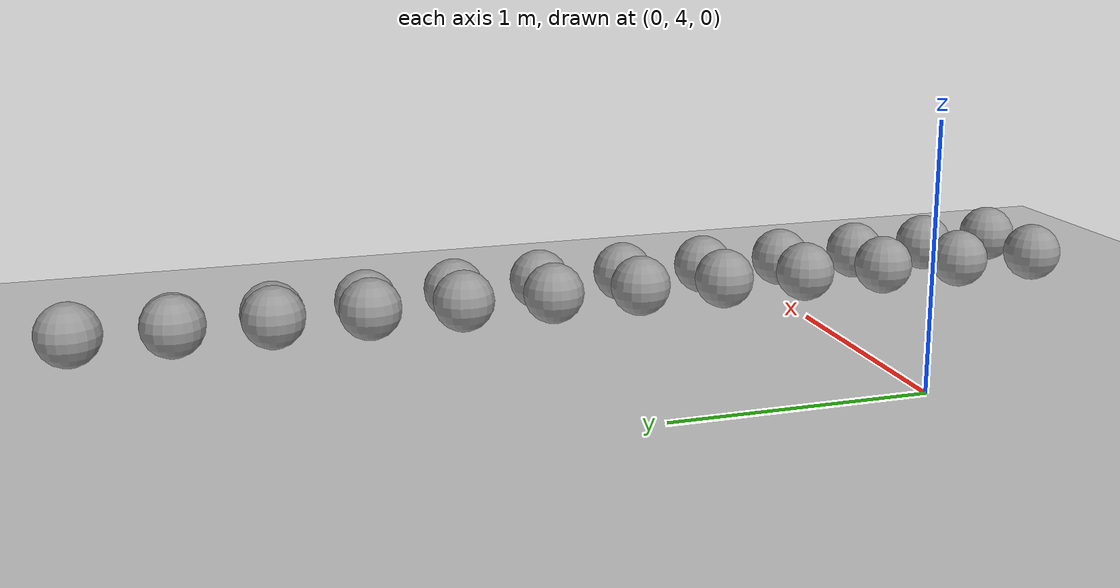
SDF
<sdf version="1.5">
 <world name="collide_spheres">
  <include><uri>model://ground_plane</uri></include>
  <include><uri>model://sun</uri></include>
  <model name="dm30">
   <pose>0.0 3.5999999999999996 0.5  0 0 0</pose>
   <self_collide>true</self_collide>
   <link name="linkA">
    <inertial>
     <mass>2.513274122871835</mass>
     <inertia>
      <ixx>0.010053096491487343</ixx>
      <iyy>0.010053096491487343</iyy>
      <izz>0.010053096491487343</izz>
      <ixy>0</ixy>
      <ixz>0</ixz>
      <iyz>0</iyz>
     </inertia>
    </inertial>
    <collision name="collision"><geometry><sphere><radius>0.1</radius></sphere></geometry></collision>
    <visual name="visual">
     <geometry><sphere><radius>0.1</radius></sphere></geometry>
     <material>
      <script><uri>file://media/materials/scripts/gazebo.material</uri><name>Gazebo/Grey</name></script>
     </material>
    </visual>
   </link>
   <link name="linkB">
    <pose>0.30000000000000004 0.0 0.0  0 0 0</pose>
    <inertial>
     <mass>2.513274122871835</mass>
     <inertia>
      <ixx>0.010053096491487343</ixx>
      <iyy>0.010053096491487343</iyy>
      <izz>0.010053096491487343</izz>
      <ixy>0</ixy>
      <ixz>0</ixz>
      <iyz>0</iyz>
     </inertia>
    </inertial>
    <collision name="collision"><geometry><sphere><radius>0.1</radius></sphere></geometry></collision>
    <visual name="visual">
     <geometry><sphere><radius>0.1</radius></sphere></geometry>
     <material>
      <script><uri>file://media/materials/scripts/gazebo.material</uri><name>Gazebo/Grey</name></script>
     </material>
    </visual>
   </link>
  </model>
  <model name="dm25">
   <pose>0.0 3.9 0.5  0 0 0</pose>
   <self_collide>true</self_collide>
   <link name="linkA">
    <inertial>
     <mass>2.513274122871835</mass>
     <inertia>
      <ixx>0.010053096491487343</ixx>
      <iyy>0.010053096491487343</iyy>
      <izz>0.010053096491487343</izz>
      <ixy>0</ixy>
      <ixz>0</ixz>
      <iyz>0</iyz>
     </inertia>
    </inertial>
    <collision name="collision"><geometry><sphere><radius>0.1</radius></sphere></geometry></collision>
    <visual name="visual">
     <geometry><sphere><radius>0.1</radius></sphere></geometry>
     <material>
      <script><uri>file://media/materials/scripts/gazebo.material</uri><name>Gazebo/Grey</name></script>
     </material>
    </visual>
   </link>
   <link name="linkB">
    <pose>0.25 0.0 0.0  0 0 0</pose>
    <inertial>
     <mass>2.513274122871835</mass>
     <inertia>
      <ixx>0.010053096491487343</ixx>
      <iyy>0.010053096491487343</iyy>
      <izz>0.010053096491487343</izz>
      <ixy>0</ixy>
      <ixz>0</ixz>
      <iyz>0</iyz>
     </inertia>
    </inertial>
    <collision name="collision"><geometry><sphere><radius>0.1</radius></sphere></geometry></collision>
    <visual name="visual">
     <geometry><sphere><radius>0.1</radius></sphere></geometry>
     <material>
      <script><uri>file://media/materials/scripts/gazebo.material</uri><name>Gazebo/Grey</name></script>
     </material>
    </visual>
   </link>
  </model>
  <model name="dm22">
   <pose>0.0 4.2 0.5  0 0 0</pose>
   <self_collide>true</self_collide>
   <link name="linkA">
    <inertial>
     <mass>2.513274122871835</mass>
     <inertia>
      <ixx>0.010053096491487343</ixx>
      <iyy>0.010053096491487343</iyy>
      <izz>0.010053096491487343</izz>
      <ixy>0</ixy>
      <ixz>0</ixz>
      <iyz>0</iyz>
     </inertia>
    </inertial>
    <collision name="collision"><geometry><sphere><radius>0.1</radius></sphere></geometry></collision>
    <visual name="visual">
     <geometry><sphere><radius>0.1</radius></sphere></geometry>
     <material>
      <script><uri>file://media/materials/scripts/gazebo.material</uri><name>Gazebo/Grey</name></script>
     </material>
    </visual>
   </link>
   <link name="linkB">
    <pose>0.22000000000000003 0.0 0.0  0 0 0</pose>
    <inertial>
     <mass>2.513274122871835</mass>
     <inertia>
      <ixx>0.010053096491487343</ixx>
      <iyy>0.010053096491487343</iyy>
      <izz>0.010053096491487343</izz>
      <ixy>0</ixy>
      <ixz>0</ixz>
      <iyz>0</iyz>
     </inertia>
    </inertial>
    <collision name="collision"><geometry><sphere><radius>0.1</radius></sphere></geometry></collision>
    <visual name="visual">
     <geometry><sphere><radius>0.1</radius></sphere></geometry>
     <material>
      <script><uri>file://media/materials/scripts/gazebo.material</uri><name>Gazebo/Grey</name></script>
     </material>
    </visual>
   </link>
  </model>
  <model name="dm21">
   <pose>0.0 4.5 0.5  0 0 0</pose>
   <self_collide>true</self_collide>
   <link name="linkA">
    <inertial>
     <mass>2.513274122871835</mass>
     <inertia>
      <ixx>0.010053096491487343</ixx>
      <iyy>0.010053096491487343</iyy>
      <izz>0.010053096491487343</izz>
      <ixy>0</ixy>
      <ixz>0</ixz>
      <iyz>0</iyz>
     </inertia>
    </inertial>
    <collision name="collision"><geometry><sphere><radius>0.1</radius></sphere></geometry></collision>
    <visual name="visual">
     <geometry><sphere><radius>0.1</radius></sphere></geometry>
     <material>
      <script><uri>file://media/materials/scripts/gazebo.material</uri><name>Gazebo/Grey</name></script>
     </material>
    </visual>
   </link>
   <link name="linkB">
    <pose>0.21000000000000002 0.0 0.0  0 0 0</pose>
    <inertial>
     <mass>2.513274122871835</mass>
     <inertia>
      <ixx>0.010053096491487343</ixx>
      <iyy>0.010053096491487343</iyy>
      <izz>0.010053096491487343</izz>
      <ixy>0</ixy>
      <ixz>0</ixz>
      <iyz>0</iyz>
     </inertia>
    </inertial>
    <collision name="collision"><geometry><sphere><radius>0.1</radius></sphere></geometry></collision>
    <visual name="visual">
     <geometry><sphere><radius>0.1</radius></sphere></geometry>
     <material>
      <script><uri>file://media/materials/scripts/gazebo.material</uri><name>Gazebo/Grey</name></script>
     </material>
    </visual>
   </link>
  </model>
  <model name="dm20">
   <pose>0.0 4.8 0.5  0 0 0</pose>
   <self_collide>true</self_collide>
   <link name="linkA">
    <inertial>
     <mass>2.513274122871835</mass>
     <inertia>
      <ixx>0.010053096491487343</ixx>
      <iyy>0.010053096491487343</iyy>
      <izz>0.010053096491487343</izz>
      <ixy>0</ixy>
      <ixz>0</ixz>
      <iyz>0</iyz>
     </inertia>
    </inertial>
    <collision name="collision"><geometry><sphere><radius>0.1</radius></sphere></geometry></collision>
    <visual name="visual">
     <geometry><sphere><radius>0.1</radius></sphere></geometry>
     <material>
      <script><uri>file://media/materials/scripts/gazebo.material</uri><name>Gazebo/Grey</name></script>
     </material>
    </visual>
   </link>
   <link name="linkB">
    <pose>0.2 0.0 0.0  0 0 0</pose>
    <inertial>
     <mass>2.513274122871835</mass>
     <inertia>
      <ixx>0.010053096491487343</ixx>
      <iyy>0.010053096491487343</iyy>
      <izz>0.010053096491487343</izz>
      <ixy>0</ixy>
      <ixz>0</ixz>
      <iyz>0</iyz>
     </inertia>
    </inertial>
    <collision name="collision"><geometry><sphere><radius>0.1</radius></sphere></geometry></collision>
    <visual name="visual">
     <geometry><sphere><radius>0.1</radius></sphere></geometry>
     <material>
      <script><uri>file://media/materials/scripts/gazebo.material</uri><name>Gazebo/Grey</name></script>
     </material>
    </visual>
   </link>
  </model>
  <model name="dm19">
   <pose>0.0 5.1 0.5  0 0 0</pose>
   <self_collide>true</self_collide>
   <link name="linkA">
    <inertial>
     <mass>2.513274122871835</mass>
     <inertia>
      <ixx>0.010053096491487343</ixx>
      <iyy>0.010053096491487343</iyy>
      <izz>0.010053096491487343</izz>
      <ixy>0</ixy>
      <ixz>0</ixz>
      <iyz>0</iyz>
     </inertia>
    </inertial>
    <collision name="collision"><geometry><sphere><radius>0.1</radius></sphere></geometry></collision>
    <visual name="visual">
     <geometry><sphere><radius>0.1</radius></sphere></geometry>
     <material>
      <script><uri>file://media/materials/scripts/gazebo.material</uri><name>Gazebo/Grey</name></script>
     </material>
    </visual>
   </link>
   <link name="linkB">
    <pose>0.19 0.0 0.0  0 0 0</pose>
    <inertial>
     <mass>2.513274122871835</mass>
     <inertia>
      <ixx>0.010053096491487343</ixx>
      <iyy>0.010053096491487343</iyy>
      <izz>0.010053096491487343</izz>
      <ixy>0</ixy>
      <ixz>0</ixz>
      <iyz>0</iyz>
     </inertia>
    </inertial>
    <collision name="collision"><geometry><sphere><radius>0.1</radius></sphere></geometry></collision>
    <visual name="visual">
     <geometry><sphere><radius>0.1</radius></sphere></geometry>
     <material>
      <script><uri>file://media/materials/scripts/gazebo.material</uri><name>Gazebo/Grey</name></script>
     </material>
    </visual>
   </link>
  </model>
  <model name="dm18">
   <pose>0.0 5.3999999999999995 0.5  0 0 0</pose>
   <self_collide>true</self_collide>
   <link name="linkA">
    <inertial>
     <mass>2.513274122871835</mass>
     <inertia>
      <ixx>0.010053096491487343</ixx>
      <iyy>0.010053096491487343</iyy>
      <izz>0.010053096491487343</izz>
      <ixy>0</ixy>
      <ixz>0</ixz>
      <iyz>0</iyz>
     </inertia>
    </inertial>
    <collision name="collision"><geometry><sphere><radius>0.1</radius></sphere></geometry></collision>
    <visual name="visual">
     <geometry><sphere><radius>0.1</radius></sphere></geometry>
     <material>
      <script><uri>file://media/materials/scripts/gazebo.material</uri><name>Gazebo/Grey</name></script>
     </material>
    </visual>
   </link>
   <link name="linkB">
    <pose>0.18000000000000002 0.0 0.0  0 0 0</pose>
    <inertial>
     <mass>2.513274122871835</mass>
     <inertia>
      <ixx>0.010053096491487343</ixx>
      <iyy>0.010053096491487343</iyy>
      <izz>0.010053096491487343</izz>
      <ixy>0</ixy>
      <ixz>0</ixz>
      <iyz>0</iyz>
     </inertia>
    </inertial>
    <collision name="collision"><geometry><sphere><radius>0.1</radius></sphere></geometry></collision>
    <visual name="visual">
     <geometry><sphere><radius>0.1</radius></sphere></geometry>
     <material>
      <script><uri>file://media/materials/scripts/gazebo.material</uri><name>Gazebo/Grey</name></script>
     </material>
    </visual>
   </link>
  </model>
  <model name="dm15">
   <pose>0.0 5.7 0.5  0 0 0</pose>
   <self_collide>true</self_collide>
   <link name="linkA">
    <inertial>
     <mass>2.513274122871835</mass>
     <inertia>
      <ixx>0.010053096491487343</ixx>
      <iyy>0.010053096491487343</iyy>
      <izz>0.010053096491487343</izz>
      <ixy>0</ixy>
      <ixz>0</ixz>
      <iyz>0</iyz>
     </inertia>
    </inertial>
    <collision name="collision"><geometry><sphere><radius>0.1</radius></sphere></geometry></collision>
    <visual name="visual">
     <geometry><sphere><radius>0.1</radius></sphere></geometry>
     <material>
      <script><uri>file://media/materials/scripts/gazebo.material</uri><name>Gazebo/Grey</name></script>
     </material>
    </visual>
   </link>
   <link name="linkB">
    <pose>0.15000000000000002 0.0 0.0  0 0 0</pose>
    <inertial>
     <mass>2.513274122871835</mass>
     <inertia>
      <ixx>0.010053096491487343</ixx>
      <iyy>0.010053096491487343</iyy>
      <izz>0.010053096491487343</izz>
      <ixy>0</ixy>
      <ixz>0</ixz>
      <iyz>0</iyz>
     </inertia>
    </inertial>
    <collision name="collision"><geometry><sphere><radius>0.1</radius></sphere></geometry></collision>
    <visual name="visual">
     <geometry><sphere><radius>0.1</radius></sphere></geometry>
     <material>
      <script><uri>file://media/materials/scripts/gazebo.material</uri><name>Gazebo/Grey</name></script>
     </material>
    </visual>
   </link>
  </model>
  <model name="dm10">
   <pose>0.0 6.0 0.5  0 0 0</pose>
   <self_collide>true</self_collide>
   <link name="linkA">
    <inertial>
     <mass>2.513274122871835</mass>
     <inertia>
      <ixx>0.010053096491487343</ixx>
      <iyy>0.010053096491487343</iyy>
      <izz>0.010053096491487343</izz>
      <ixy>0</ixy>
      <ixz>0</ixz>
      <iyz>0</iyz>
     </inertia>
    </inertial>
    <collision name="collision"><geometry><sphere><radius>0.1</radius></sphere></geometry></collision>
    <visual name="visual">
     <geometry><sphere><radius>0.1</radius></sphere></geometry>
     <material>
      <script><uri>file://media/materials/scripts/gazebo.material</uri><name>Gazebo/Grey</name></script>
     </material>
    </visual>
   </link>
   <link name="linkB">
    <pose>0.1 0.0 0.0  0 0 0</pose>
    <inertial>
     <mass>2.513274122871835</mass>
     <inertia>
      <ixx>0.010053096491487343</ixx>
      <iyy>0.010053096491487343</iyy>
      <izz>0.010053096491487343</izz>
      <ixy>0</ixy>
      <ixz>0</ixz>
      <iyz>0</iyz>
     </inertia>
    </inertial>
    <collision name="collision"><geometry><sphere><radius>0.1</radius></sphere></geometry></collision>
    <visual name="visual">
     <geometry><sphere><radius>0.1</radius></sphere></geometry>
     <material>
      <script><uri>file://media/materials/scripts/gazebo.material</uri><name>Gazebo/Grey</name></script>
     </material>
    </visual>
   </link>
  </model>
  <model name="dm05">
   <pose>0.0 6.3 0.5  0 0 0</pose>
   <self_collide>true</self_collide>
   <link name="linkA">
    <inertial>
     <mass>2.513274122871835</mass>
     <inertia>
      <ixx>0.010053096491487343</ixx>
      <iyy>0.010053096491487343</iyy>
      <izz>0.010053096491487343</izz>
      <ixy>0</ixy>
      <ixz>0</ixz>
      <iyz>0</iyz>
     </inertia>
    </inertial>
    <collision name="collision"><geometry><sphere><radius>0.1</radius></sphere></geometry></collision>
    <visual name="visual">
     <geometry><sphere><radius>0.1</radius></sphere></geometry>
     <material>
      <script><uri>file://media/materials/scripts/gazebo.material</uri><name>Gazebo/Grey</name></script>
     </material>
    </visual>
   </link>
   <link name="linkB">
    <pose>0.05 0.0 0.0  0 0 0</pose>
    <inertial>
     <mass>2.513274122871835</mass>
     <inertia>
      <ixx>0.010053096491487343</ixx>
      <iyy>0.010053096491487343</iyy>
      <izz>0.010053096491487343</izz>
      <ixy>0</ixy>
      <ixz>0</ixz>
      <iyz>0</iyz>
     </inertia>
    </inertial>
    <collision name="collision"><geometry><sphere><radius>0.1</radius></sphere></geometry></collision>
    <visual name="visual">
     <geometry><sphere><radius>0.1</radius></sphere></geometry>
     <material>
      <script><uri>file://media/materials/scripts/gazebo.material</uri><name>Gazebo/Grey</name></script>
     </material>
    </visual>
   </link>
  </model>
  <model name="dm01">
   <pose>0.0 6.6 0.5  0 0 0</pose>
   <self_collide>true</self_collide>
   <link name="linkA">
    <inertial>
     <mass>2.513274122871835</mass>
     <inertia>
      <ixx>0.010053096491487343</ixx>
      <iyy>0.010053096491487343</iyy>
      <izz>0.010053096491487343</izz>
      <ixy>0</ixy>
      <ixz>0</ixz>
      <iyz>0</iyz>
     </inertia>
    </inertial>
    <collision name="collision"><geometry><sphere><radius>0.1</radius></sphere></geometry></collision>
    <visual name="visual">
     <geometry><sphere><radius>0.1</radius></sphere></geometry>
     <material>
      <script><uri>file://media/materials/scripts/gazebo.material</uri><name>Gazebo/Grey</name></script>
     </material>
    </visual>
   </link>
   <link name="linkB">
    <pose>0.010000000000000002 0.0 0.0  0 0 0</pose>
    <inertial>
     <mass>2.513274122871835</mass>
     <inertia>
      <ixx>0.010053096491487343</ixx>
      <iyy>0.010053096491487343</iyy>
      <izz>0.010053096491487343</izz>
      <ixy>0</ixy>
      <ixz>0</ixz>
      <iyz>0</iyz>
     </inertia>
    </inertial>
    <collision name="collision"><geometry><sphere><radius>0.1</radius></sphere></geometry></collision>
    <visual name="visual">
     <geometry><sphere><radius>0.1</radius></sphere></geometry>
     <material>
      <script><uri>file://media/materials/scripts/gazebo.material</uri><name>Gazebo/Grey</name></script>
     </material>
    </visual>
   </link>
  </model>
  <model name="dm00">
   <pose>0.0 6.8999999999999995 0.5  0 0 0</pose>
   <self_collide>true</self_collide>
   <link name="linkA">
    <inertial>
     <mass>2.513274122871835</mass>
     <inertia>
      <ixx>0.010053096491487343</ixx>
      <iyy>0.010053096491487343</iyy>
      <izz>0.010053096491487343</izz>
      <ixy>0</ixy>
      <ixz>0</ixz>
      <iyz>0</iyz>
     </inertia>
    </inertial>
    <collision name="collision"><geometry><sphere><radius>0.1</radius></sphere></geometry></collision>
    <visual name="visual">
     <geometry><sphere><radius>0.1</radius></sphere></geometry>
     <material>
      <script><uri>file://media/materials/scripts/gazebo.material</uri><name>Gazebo/Grey</name></script>
     </material>
    </visual>
   </link>
   <link name="linkB">
    <inertial>
     <mass>2.513274122871835</mass>
     <inertia>
      <ixx>0.010053096491487343</ixx>
      <iyy>0.010053096491487343</iyy>
      <izz>0.010053096491487343</izz>
      <ixy>0</ixy>
      <ixz>0</ixz>
      <iyz>0</iyz>
     </inertia>
    </inertial>
    <collision name="collision"><geometry><sphere><radius>0.1</radius></sphere></geometry></collision>
    <visual name="visual">
     <geometry><sphere><radius>0.1</radius></sphere></geometry>
     <material>
      <script><uri>file://media/materials/scripts/gazebo.material</uri><name>Gazebo/Grey</name></script>
     </material>
    </visual>
   </link>
  </model>
 </world>
</sdf>
